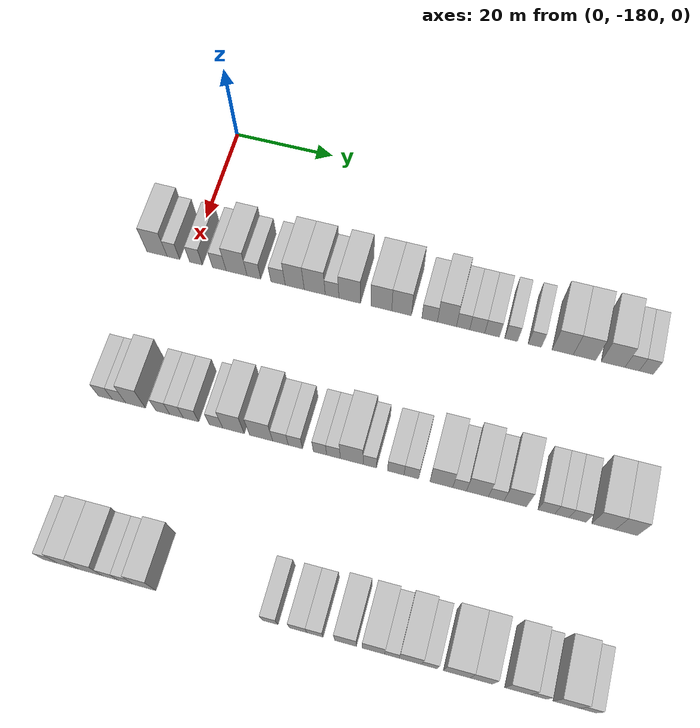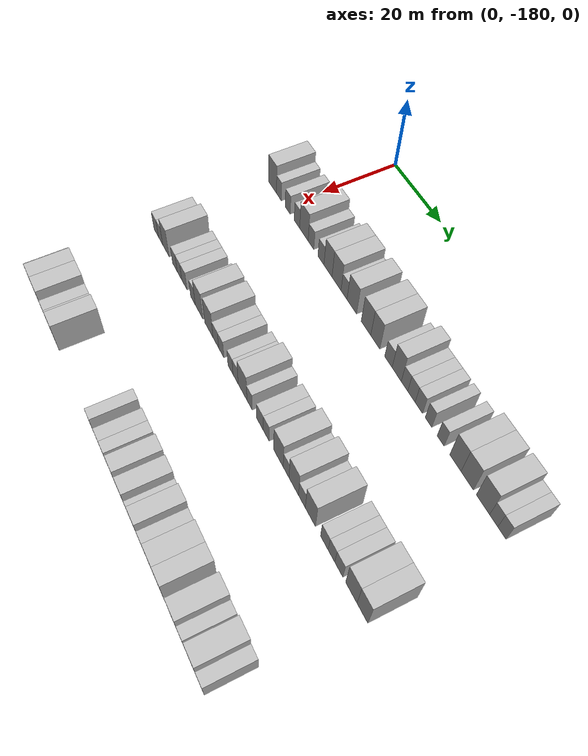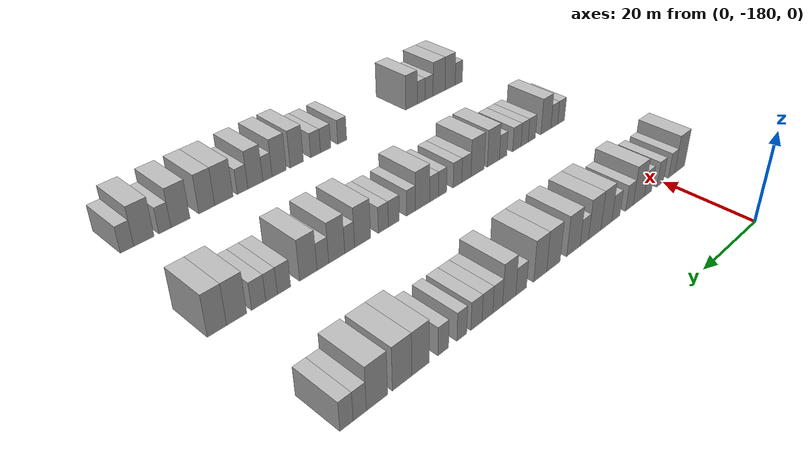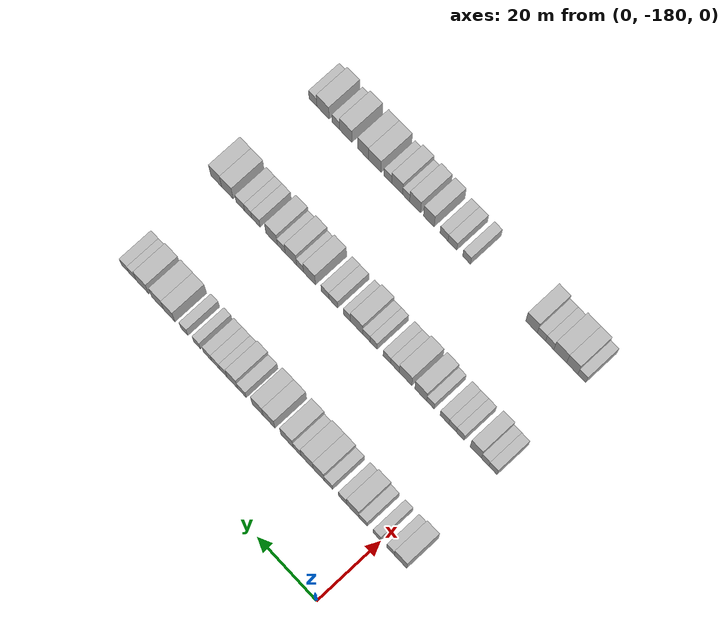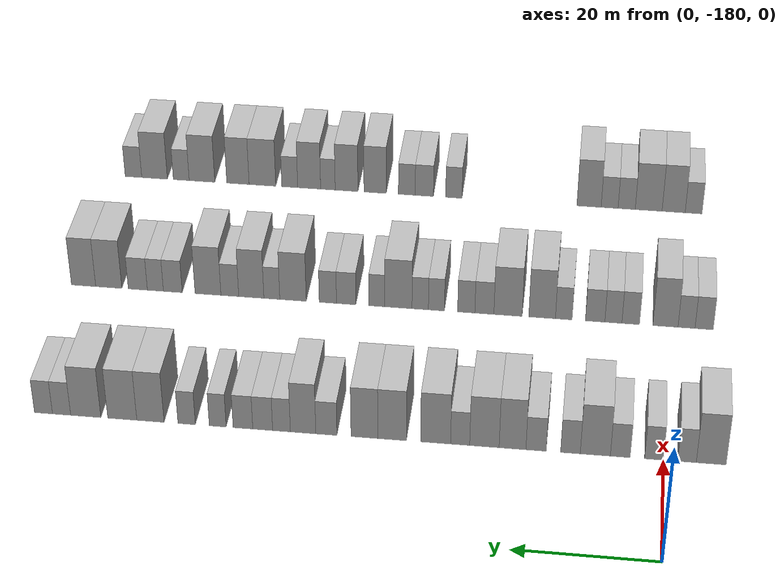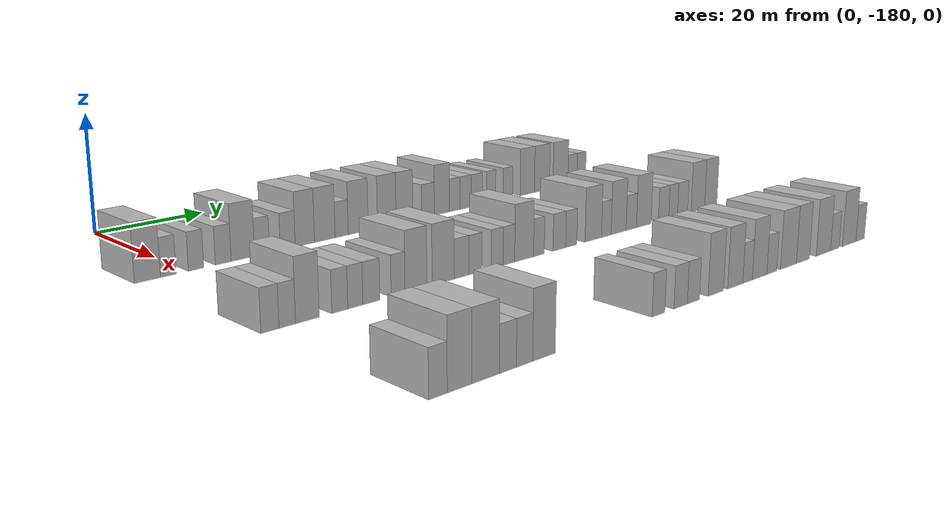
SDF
<sdf version="1.6">
 <world name="default">
  <model name="building_23">
   <static>1</static>
   <pose>25.0000 -186.5539 0 0.000000 0.000000 0.000000</pose>
   <link name="link">
    <pose>0 0 4.50 0 0 0</pose>
    <collision name="collision"><geometry><box><size>10.0000 4.1057 9.0000</size></box></geometry></collision>
    <visual name="visual">
     <cast_shadows>0</cast_shadows>
     <geometry><box><size>10.0000 4.1057 9.0000</size></box></geometry>
     <material>
      <script>
       <uri>model://HANNAS_wall/materials/scripts</uri>
       <uri>model://HANNAS_wall/materials/textures</uri>
       <name>vrc/HANNAS_wall</name>
      </script>
     </material>
    </visual>
   </link>
  </model>
  <model name="building_24">
   <static>1</static>
   <pose>25.0000 -183.2308 0 0.000000 0.000000 0.000000</pose>
   <link name="link">
    <pose>0 0 3.00 0 0 0</pose>
    <collision name="collision"><geometry><box><size>10.0000 2.5404 6.0000</size></box></geometry></collision>
    <visual name="visual">
     <cast_shadows>0</cast_shadows>
     <geometry><box><size>10.0000 2.5404 6.0000</size></box></geometry>
     <material>
      <script>
       <uri>model://HANNAS_wall/materials/scripts</uri>
       <uri>model://HANNAS_wall/materials/textures</uri>
       <name>vrc/HANNAS_wall</name>
      </script>
     </material>
    </visual>
   </link>
  </model>
  <model name="building_25">
   <static>1</static>
   <pose>25.0000 -178.6758 0 0.000000 0.000000 0.000000</pose>
   <link name="link">
    <pose>0 0 3.00 0 0 0</pose>
    <collision name="collision"><geometry><box><size>10.0000 2.5698 6.0000</size></box></geometry></collision>
    <visual name="visual">
     <cast_shadows>0</cast_shadows>
     <geometry><box><size>10.0000 2.5698 6.0000</size></box></geometry>
     <material>
      <script>
       <uri>model://HANNAS_wall/materials/scripts</uri>
       <uri>model://HANNAS_wall/materials/textures</uri>
       <name>vrc/HANNAS_wall</name>
      </script>
     </material>
    </visual>
   </link>
  </model>
  <model name="building_26">
   <static>1</static>
   <pose>25.0000 -174.0191 0 0.000000 0.000000 0.000000</pose>
   <link name="link">
    <pose>0 0 3.00 0 0 0</pose>
    <collision name="collision"><geometry><box><size>10.0000 2.7436 6.0000</size></box></geometry></collision>
    <visual name="visual">
     <cast_shadows>0</cast_shadows>
     <geometry><box><size>10.0000 2.7436 6.0000</size></box></geometry>
     <material>
      <script>
       <uri>model://HANNAS_wall/materials/scripts</uri>
       <uri>model://HANNAS_wall/materials/textures</uri>
       <name>vrc/HANNAS_wall</name>
      </script>
     </material>
    </visual>
   </link>
  </model>
  <model name="building_27">
   <static>1</static>
   <pose>25.0000 -170.5623 0 0.000000 0.000000 0.000000</pose>
   <link name="link">
    <pose>0 0 4.50 0 0 0</pose>
    <collision name="collision"><geometry><box><size>10.0000 4.1702 9.0000</size></box></geometry></collision>
    <visual name="visual">
     <cast_shadows>0</cast_shadows>
     <geometry><box><size>10.0000 4.1702 9.0000</size></box></geometry>
     <material>
      <script>
       <uri>model://HANNAS_wall/materials/scripts</uri>
       <uri>model://HANNAS_wall/materials/textures</uri>
       <name>vrc/HANNAS_wall</name>
      </script>
     </material>
    </visual>
   </link>
  </model>
  <model name="building_28">
   <static>1</static>
   <pose>25.0000 -167.1116 0 0.000000 0.000000 0.000000</pose>
   <link name="link">
    <pose>0 0 3.00 0 0 0</pose>
    <collision name="collision"><geometry><box><size>10.0000 2.7311 6.0000</size></box></geometry></collision>
    <visual name="visual">
     <cast_shadows>0</cast_shadows>
     <geometry><box><size>10.0000 2.7311 6.0000</size></box></geometry>
     <material>
      <script>
       <uri>model://HANNAS_wall/materials/scripts</uri>
       <uri>model://HANNAS_wall/materials/textures</uri>
       <name>vrc/HANNAS_wall</name>
      </script>
     </material>
    </visual>
   </link>
  </model>
  <model name="building_29">
   <static>1</static>
   <pose>25.0000 -162.3323 0 0.000000 0.000000 0.000000</pose>
   <link name="link">
    <pose>0 0 3.00 0 0 0</pose>
    <collision name="collision"><geometry><box><size>10.0000 2.8275 6.0000</size></box></geometry></collision>
    <visual name="visual">
     <cast_shadows>0</cast_shadows>
     <geometry><box><size>10.0000 2.8275 6.0000</size></box></geometry>
     <material>
      <script>
       <uri>model://HANNAS_wall/materials/scripts</uri>
       <uri>model://HANNAS_wall/materials/textures</uri>
       <name>vrc/HANNAS_wall</name>
      </script>
     </material>
    </visual>
   </link>
  </model>
  <model name="building_30">
   <static>1</static>
   <pose>25.0000 -159.0452 0 0.000000 0.000000 0.000000</pose>
   <link name="link">
    <pose>0 0 4.50 0 0 0</pose>
    <collision name="collision"><geometry><box><size>10.0000 3.7467 9.0000</size></box></geometry></collision>
    <visual name="visual">
     <cast_shadows>0</cast_shadows>
     <geometry><box><size>10.0000 3.7467 9.0000</size></box></geometry>
     <material>
      <script>
       <uri>model://HANNAS_wall/materials/scripts</uri>
       <uri>model://HANNAS_wall/materials/textures</uri>
       <name>vrc/HANNAS_wall</name>
      </script>
     </material>
    </visual>
   </link>
  </model>
  <model name="building_31">
   <static>1</static>
   <pose>25.0000 -155.1113 0 0.000000 0.000000 0.000000</pose>
   <link name="link">
    <pose>0 0 4.50 0 0 0</pose>
    <collision name="collision"><geometry><box><size>10.0000 4.1211 9.0000</size></box></geometry></collision>
    <visual name="visual">
     <cast_shadows>0</cast_shadows>
     <geometry><box><size>10.0000 4.1211 9.0000</size></box></geometry>
     <material>
      <script>
       <uri>model://HANNAS_wall/materials/scripts</uri>
       <uri>model://HANNAS_wall/materials/textures</uri>
       <name>vrc/HANNAS_wall</name>
      </script>
     </material>
    </visual>
   </link>
  </model>
  <model name="building_32">
   <static>1</static>
   <pose>25.0000 -151.7106 0 0.000000 0.000000 0.000000</pose>
   <link name="link">
    <pose>0 0 3.00 0 0 0</pose>
    <collision name="collision"><geometry><box><size>10.0000 2.6804 6.0000</size></box></geometry></collision>
    <visual name="visual">
     <cast_shadows>0</cast_shadows>
     <geometry><box><size>10.0000 2.6804 6.0000</size></box></geometry>
     <material>
      <script>
       <uri>model://HANNAS_wall/materials/scripts</uri>
       <uri>model://HANNAS_wall/materials/textures</uri>
       <name>vrc/HANNAS_wall</name>
      </script>
     </material>
    </visual>
   </link>
  </model>
  <model name="building_33">
   <static>1</static>
   <pose>25.0000 -148.2665 0 0.000000 0.000000 0.000000</pose>
   <link name="link">
    <pose>0 0 4.50 0 0 0</pose>
    <collision name="collision"><geometry><box><size>10.0000 4.2079 9.0000</size></box></geometry></collision>
    <visual name="visual">
     <cast_shadows>0</cast_shadows>
     <geometry><box><size>10.0000 4.2079 9.0000</size></box></geometry>
     <material>
      <script>
       <uri>model://HANNAS_wall/materials/scripts</uri>
       <uri>model://HANNAS_wall/materials/textures</uri>
       <name>vrc/HANNAS_wall</name>
      </script>
     </material>
    </visual>
   </link>
  </model>
  <model name="building_34">
   <static>1</static>
   <pose>25.0000 -142.1418 0 0.000000 0.000000 0.000000</pose>
   <link name="link">
    <pose>0 0 4.50 0 0 0</pose>
    <collision name="collision"><geometry><box><size>10.0000 4.0413 9.0000</size></box></geometry></collision>
    <visual name="visual">
     <cast_shadows>0</cast_shadows>
     <geometry><box><size>10.0000 4.0413 9.0000</size></box></geometry>
     <material>
      <script>
       <uri>model://HANNAS_wall/materials/scripts</uri>
       <uri>model://HANNAS_wall/materials/textures</uri>
       <name>vrc/HANNAS_wall</name>
      </script>
     </material>
    </visual>
   </link>
  </model>
  <model name="building_35">
   <static>1</static>
   <pose>25.0000 -138.2296 0 0.000000 0.000000 0.000000</pose>
   <link name="link">
    <pose>0 0 4.50 0 0 0</pose>
    <collision name="collision"><geometry><box><size>10.0000 3.7831 9.0000</size></box></geometry></collision>
    <visual name="visual">
     <cast_shadows>0</cast_shadows>
     <geometry><box><size>10.0000 3.7831 9.0000</size></box></geometry>
     <material>
      <script>
       <uri>model://HANNAS_wall/materials/scripts</uri>
       <uri>model://HANNAS_wall/materials/textures</uri>
       <name>vrc/HANNAS_wall</name>
      </script>
     </material>
    </visual>
   </link>
  </model>
  <model name="building_36">
   <static>1</static>
   <pose>25.0000 -132.8399 0 0.000000 0.000000 0.000000</pose>
   <link name="link">
    <pose>0 0 3.00 0 0 0</pose>
    <collision name="collision"><geometry><box><size>10.0000 2.9964 6.0000</size></box></geometry></collision>
    <visual name="visual">
     <cast_shadows>0</cast_shadows>
     <geometry><box><size>10.0000 2.9964 6.0000</size></box></geometry>
     <material>
      <script>
       <uri>model://HANNAS_wall/materials/scripts</uri>
       <uri>model://HANNAS_wall/materials/textures</uri>
       <name>vrc/HANNAS_wall</name>
      </script>
     </material>
    </visual>
   </link>
  </model>
  <model name="building_37">
   <static>1</static>
   <pose>25.0000 -129.5317 0 0.000000 0.000000 0.000000</pose>
   <link name="link">
    <pose>0 0 4.50 0 0 0</pose>
    <collision name="collision"><geometry><box><size>10.0000 3.6201 9.0000</size></box></geometry></collision>
    <visual name="visual">
     <cast_shadows>0</cast_shadows>
     <geometry><box><size>10.0000 3.6201 9.0000</size></box></geometry>
     <material>
      <script>
       <uri>model://HANNAS_wall/materials/scripts</uri>
       <uri>model://HANNAS_wall/materials/textures</uri>
       <name>vrc/HANNAS_wall</name>
      </script>
     </material>
    </visual>
   </link>
  </model>
  <model name="building_38">
   <static>1</static>
   <pose>25.0000 -126.4576 0 0.000000 0.000000 0.000000</pose>
   <link name="link">
    <pose>0 0 3.00 0 0 0</pose>
    <collision name="collision"><geometry><box><size>10.0000 2.5280 6.0000</size></box></geometry></collision>
    <visual name="visual">
     <cast_shadows>0</cast_shadows>
     <geometry><box><size>10.0000 2.5280 6.0000</size></box></geometry>
     <material>
      <script>
       <uri>model://HANNAS_wall/materials/scripts</uri>
       <uri>model://HANNAS_wall/materials/textures</uri>
       <name>vrc/HANNAS_wall</name>
      </script>
     </material>
    </visual>
   </link>
  </model>
  <model name="building_39">
   <static>1</static>
   <pose>25.0000 -123.7760 0 0.000000 0.000000 0.000000</pose>
   <link name="link">
    <pose>0 0 3.00 0 0 0</pose>
    <collision name="collision"><geometry><box><size>10.0000 2.8352 6.0000</size></box></geometry></collision>
    <visual name="visual">
     <cast_shadows>0</cast_shadows>
     <geometry><box><size>10.0000 2.8352 6.0000</size></box></geometry>
     <material>
      <script>
       <uri>model://HANNAS_wall/materials/scripts</uri>
       <uri>model://HANNAS_wall/materials/textures</uri>
       <name>vrc/HANNAS_wall</name>
      </script>
     </material>
    </visual>
   </link>
  </model>
  <model name="building_40">
   <static>1</static>
   <pose>25.0000 -120.9576 0 0.000000 0.000000 0.000000</pose>
   <link name="link">
    <pose>0 0 3.00 0 0 0</pose>
    <collision name="collision"><geometry><box><size>10.0000 2.8017 6.0000</size></box></geometry></collision>
    <visual name="visual">
     <cast_shadows>0</cast_shadows>
     <geometry><box><size>10.0000 2.8017 6.0000</size></box></geometry>
     <material>
      <script>
       <uri>model://HANNAS_wall/materials/scripts</uri>
       <uri>model://HANNAS_wall/materials/textures</uri>
       <name>vrc/HANNAS_wall</name>
      </script>
     </material>
    </visual>
   </link>
  </model>
  <model name="building_41">
   <static>1</static>
   <pose>25.0000 -117.3510 0 0.000000 0.000000 0.000000</pose>
   <link name="link">
    <pose>0 0 3.00 0 0 0</pose>
    <collision name="collision"><geometry><box><size>10.0000 2.4115 6.0000</size></box></geometry></collision>
    <visual name="visual">
     <cast_shadows>0</cast_shadows>
     <geometry><box><size>10.0000 2.4115 6.0000</size></box></geometry>
     <material>
      <script>
       <uri>model://HANNAS_wall/materials/scripts</uri>
       <uri>model://HANNAS_wall/materials/textures</uri>
       <name>vrc/HANNAS_wall</name>
      </script>
     </material>
    </visual>
   </link>
  </model>
  <model name="building_42">
   <static>1</static>
   <pose>25.0000 -112.8943 0 0.000000 0.000000 0.000000</pose>
   <link name="link">
    <pose>0 0 3.00 0 0 0</pose>
    <collision name="collision"><geometry><box><size>10.0000 2.5019 6.0000</size></box></geometry></collision>
    <visual name="visual">
     <cast_shadows>0</cast_shadows>
     <geometry><box><size>10.0000 2.5019 6.0000</size></box></geometry>
     <material>
      <script>
       <uri>model://HANNAS_wall/materials/scripts</uri>
       <uri>model://HANNAS_wall/materials/textures</uri>
       <name>vrc/HANNAS_wall</name>
      </script>
     </material>
    </visual>
   </link>
  </model>
  <model name="building_43">
   <static>1</static>
   <pose>25.0000 -107.6780 0 0.000000 0.000000 0.000000</pose>
   <link name="link">
    <pose>0 0 4.50 0 0 0</pose>
    <collision name="collision"><geometry><box><size>10.0000 3.9306 9.0000</size></box></geometry></collision>
    <visual name="visual">
     <cast_shadows>0</cast_shadows>
     <geometry><box><size>10.0000 3.9306 9.0000</size></box></geometry>
     <material>
      <script>
       <uri>model://HANNAS_wall/materials/scripts</uri>
       <uri>model://HANNAS_wall/materials/textures</uri>
       <name>vrc/HANNAS_wall</name>
      </script>
     </material>
    </visual>
   </link>
  </model>
  <model name="building_44">
   <static>1</static>
   <pose>25.0000 -103.6132 0 0.000000 0.000000 0.000000</pose>
   <link name="link">
    <pose>0 0 4.50 0 0 0</pose>
    <collision name="collision"><geometry><box><size>10.0000 4.1989 9.0000</size></box></geometry></collision>
    <visual name="visual">
     <cast_shadows>0</cast_shadows>
     <geometry><box><size>10.0000 4.1989 9.0000</size></box></geometry>
     <material>
      <script>
       <uri>model://HANNAS_wall/materials/scripts</uri>
       <uri>model://HANNAS_wall/materials/textures</uri>
       <name>vrc/HANNAS_wall</name>
      </script>
     </material>
    </visual>
   </link>
  </model>
  <model name="building_45">
   <static>1</static>
   <pose>25.0000 -98.3265 0 0.000000 0.000000 0.000000</pose>
   <link name="link">
    <pose>0 0 4.50 0 0 0</pose>
    <collision name="collision"><geometry><box><size>10.0000 4.3746 9.0000</size></box></geometry></collision>
    <visual name="visual">
     <cast_shadows>0</cast_shadows>
     <geometry><box><size>10.0000 4.3746 9.0000</size></box></geometry>
     <material>
      <script>
       <uri>model://HANNAS_wall/materials/scripts</uri>
       <uri>model://HANNAS_wall/materials/textures</uri>
       <name>vrc/HANNAS_wall</name>
      </script>
     </material>
    </visual>
   </link>
  </model>
  <model name="building_46">
   <static>1</static>
   <pose>25.0000 -94.8186 0 0.000000 0.000000 0.000000</pose>
   <link name="link">
    <pose>0 0 3.00 0 0 0</pose>
    <collision name="collision"><geometry><box><size>10.0000 2.6411 6.0000</size></box></geometry></collision>
    <visual name="visual">
     <cast_shadows>0</cast_shadows>
     <geometry><box><size>10.0000 2.6411 6.0000</size></box></geometry>
     <material>
      <script>
       <uri>model://HANNAS_wall/materials/scripts</uri>
       <uri>model://HANNAS_wall/materials/textures</uri>
       <name>vrc/HANNAS_wall</name>
      </script>
     </material>
    </visual>
   </link>
  </model>
  <model name="building_47">
   <static>1</static>
   <pose>25.0000 -92.1925 0 0.000000 0.000000 0.000000</pose>
   <link name="link">
    <pose>0 0 3.00 0 0 0</pose>
    <collision name="collision"><geometry><box><size>10.0000 2.6111 6.0000</size></box></geometry></collision>
    <visual name="visual">
     <cast_shadows>0</cast_shadows>
     <geometry><box><size>10.0000 2.6111 6.0000</size></box></geometry>
     <material>
      <script>
       <uri>model://HANNAS_wall/materials/scripts</uri>
       <uri>model://HANNAS_wall/materials/textures</uri>
       <name>vrc/HANNAS_wall</name>
      </script>
     </material>
    </visual>
   </link>
  </model>
  <model name="building_172">
   <static>1</static>
   <pose>55.0000 -185.7574 0 0.000000 0.000000 0.000000</pose>
   <link name="link">
    <pose>0 0 3.00 0 0 0</pose>
    <collision name="collision"><geometry><box><size>10.0000 2.7124 6.0000</size></box></geometry></collision>
    <visual name="visual">
     <cast_shadows>0</cast_shadows>
     <geometry><box><size>10.0000 2.7124 6.0000</size></box></geometry>
     <material>
      <script>
       <uri>model://HANNAS_wall/materials/scripts</uri>
       <uri>model://HANNAS_wall/materials/textures</uri>
       <name>vrc/HANNAS_wall</name>
      </script>
     </material>
    </visual>
   </link>
  </model>
  <model name="building_173">
   <static>1</static>
   <pose>55.0000 -183.1334 0 0.000000 0.000000 0.000000</pose>
   <link name="link">
    <pose>0 0 3.00 0 0 0</pose>
    <collision name="collision"><geometry><box><size>10.0000 2.5355 6.0000</size></box></geometry></collision>
    <visual name="visual">
     <cast_shadows>0</cast_shadows>
     <geometry><box><size>10.0000 2.5355 6.0000</size></box></geometry>
     <material>
      <script>
       <uri>model://HANNAS_wall/materials/scripts</uri>
       <uri>model://HANNAS_wall/materials/textures</uri>
       <name>vrc/HANNAS_wall</name>
      </script>
     </material>
    </visual>
   </link>
  </model>
  <model name="building_174">
   <static>1</static>
   <pose>55.0000 -179.9949 0 0.000000 0.000000 0.000000</pose>
   <link name="link">
    <pose>0 0 4.50 0 0 0</pose>
    <collision name="collision"><geometry><box><size>10.0000 3.7415 9.0000</size></box></geometry></collision>
    <visual name="visual">
     <cast_shadows>0</cast_shadows>
     <geometry><box><size>10.0000 3.7415 9.0000</size></box></geometry>
     <material>
      <script>
       <uri>model://HANNAS_wall/materials/scripts</uri>
       <uri>model://HANNAS_wall/materials/textures</uri>
       <name>vrc/HANNAS_wall</name>
      </script>
     </material>
    </visual>
   </link>
  </model>
  <model name="building_175">
   <static>1</static>
   <pose>55.0000 -174.8035 0 0.000000 0.000000 0.000000</pose>
   <link name="link">
    <pose>0 0 3.00 0 0 0</pose>
    <collision name="collision"><geometry><box><size>10.0000 2.6413 6.0000</size></box></geometry></collision>
    <visual name="visual">
     <cast_shadows>0</cast_shadows>
     <geometry><box><size>10.0000 2.6413 6.0000</size></box></geometry>
     <material>
      <script>
       <uri>model://HANNAS_wall/materials/scripts</uri>
       <uri>model://HANNAS_wall/materials/textures</uri>
       <name>vrc/HANNAS_wall</name>
      </script>
     </material>
    </visual>
   </link>
  </model>
  <model name="building_176">
   <static>1</static>
   <pose>55.0000 -172.2052 0 0.000000 0.000000 0.000000</pose>
   <link name="link">
    <pose>0 0 3.00 0 0 0</pose>
    <collision name="collision"><geometry><box><size>10.0000 2.5553 6.0000</size></box></geometry></collision>
    <visual name="visual">
     <cast_shadows>0</cast_shadows>
     <geometry><box><size>10.0000 2.5553 6.0000</size></box></geometry>
     <material>
      <script>
       <uri>model://HANNAS_wall/materials/scripts</uri>
       <uri>model://HANNAS_wall/materials/textures</uri>
       <name>vrc/HANNAS_wall</name>
      </script>
     </material>
    </visual>
   </link>
  </model>
  <model name="building_177">
   <static>1</static>
   <pose>55.0000 -169.4721 0 0.000000 0.000000 0.000000</pose>
   <link name="link">
    <pose>0 0 3.00 0 0 0</pose>
    <collision name="collision"><geometry><box><size>10.0000 2.9108 6.0000</size></box></geometry></collision>
    <visual name="visual">
     <cast_shadows>0</cast_shadows>
     <geometry><box><size>10.0000 2.9108 6.0000</size></box></geometry>
     <material>
      <script>
       <uri>model://HANNAS_wall/materials/scripts</uri>
       <uri>model://HANNAS_wall/materials/textures</uri>
       <name>vrc/HANNAS_wall</name>
      </script>
     </material>
    </visual>
   </link>
  </model>
  <model name="building_178">
   <static>1</static>
   <pose>55.0000 -164.7598 0 0.000000 0.000000 0.000000</pose>
   <link name="link">
    <pose>0 0 3.00 0 0 0</pose>
    <collision name="collision"><geometry><box><size>10.0000 2.5138 6.0000</size></box></geometry></collision>
    <visual name="visual">
     <cast_shadows>0</cast_shadows>
     <geometry><box><size>10.0000 2.5138 6.0000</size></box></geometry>
     <material>
      <script>
       <uri>model://HANNAS_wall/materials/scripts</uri>
       <uri>model://HANNAS_wall/materials/textures</uri>
       <name>vrc/HANNAS_wall</name>
      </script>
     </material>
    </visual>
   </link>
  </model>
  <model name="building_179">
   <static>1</static>
   <pose>55.0000 -161.4939 0 0.000000 0.000000 0.000000</pose>
   <link name="link">
    <pose>0 0 4.50 0 0 0</pose>
    <collision name="collision"><geometry><box><size>10.0000 4.0181 9.0000</size></box></geometry></collision>
    <visual name="visual">
     <cast_shadows>0</cast_shadows>
     <geometry><box><size>10.0000 4.0181 9.0000</size></box></geometry>
     <material>
      <script>
       <uri>model://HANNAS_wall/materials/scripts</uri>
       <uri>model://HANNAS_wall/materials/textures</uri>
       <name>vrc/HANNAS_wall</name>
      </script>
     </material>
    </visual>
   </link>
  </model>
  <model name="building_180">
   <static>1</static>
   <pose>55.0000 -156.3448 0 0.000000 0.000000 0.000000</pose>
   <link name="link">
    <pose>0 0 4.50 0 0 0</pose>
    <collision name="collision"><geometry><box><size>10.0000 4.2801 9.0000</size></box></geometry></collision>
    <visual name="visual">
     <cast_shadows>0</cast_shadows>
     <geometry><box><size>10.0000 4.2801 9.0000</size></box></geometry>
     <material>
      <script>
       <uri>model://HANNAS_wall/materials/scripts</uri>
       <uri>model://HANNAS_wall/materials/textures</uri>
       <name>vrc/HANNAS_wall</name>
      </script>
     </material>
    </visual>
   </link>
  </model>
  <model name="building_181">
   <static>1</static>
   <pose>55.0000 -152.7643 0 0.000000 0.000000 0.000000</pose>
   <link name="link">
    <pose>0 0 3.00 0 0 0</pose>
    <collision name="collision"><geometry><box><size>10.0000 2.8809 6.0000</size></box></geometry></collision>
    <visual name="visual">
     <cast_shadows>0</cast_shadows>
     <geometry><box><size>10.0000 2.8809 6.0000</size></box></geometry>
     <material>
      <script>
       <uri>model://HANNAS_wall/materials/scripts</uri>
       <uri>model://HANNAS_wall/materials/textures</uri>
       <name>vrc/HANNAS_wall</name>
      </script>
     </material>
    </visual>
   </link>
  </model>
  <model name="building_182">
   <static>1</static>
   <pose>55.0000 -150.0149 0 0.000000 0.000000 0.000000</pose>
   <link name="link">
    <pose>0 0 3.00 0 0 0</pose>
    <collision name="collision"><geometry><box><size>10.0000 2.6179 6.0000</size></box></geometry></collision>
    <visual name="visual">
     <cast_shadows>0</cast_shadows>
     <geometry><box><size>10.0000 2.6179 6.0000</size></box></geometry>
     <material>
      <script>
       <uri>model://HANNAS_wall/materials/scripts</uri>
       <uri>model://HANNAS_wall/materials/textures</uri>
       <name>vrc/HANNAS_wall</name>
      </script>
     </material>
    </visual>
   </link>
  </model>
  <model name="building_183">
   <static>1</static>
   <pose>55.0000 -145.4830 0 0.000000 0.000000 0.000000</pose>
   <link name="link">
    <pose>0 0 3.00 0 0 0</pose>
    <collision name="collision"><geometry><box><size>10.0000 2.4460 6.0000</size></box></geometry></collision>
    <visual name="visual">
     <cast_shadows>0</cast_shadows>
     <geometry><box><size>10.0000 2.4460 6.0000</size></box></geometry>
     <material>
      <script>
       <uri>model://HANNAS_wall/materials/scripts</uri>
       <uri>model://HANNAS_wall/materials/textures</uri>
       <name>vrc/HANNAS_wall</name>
      </script>
     </material>
    </visual>
   </link>
  </model>
  <model name="building_184">
   <static>1</static>
   <pose>55.0000 -143.0104 0 0.000000 0.000000 0.000000</pose>
   <link name="link">
    <pose>0 0 3.00 0 0 0</pose>
    <collision name="collision"><geometry><box><size>10.0000 2.4992 6.0000</size></box></geometry></collision>
    <visual name="visual">
     <cast_shadows>0</cast_shadows>
     <geometry><box><size>10.0000 2.4992 6.0000</size></box></geometry>
     <material>
      <script>
       <uri>model://HANNAS_wall/materials/scripts</uri>
       <uri>model://HANNAS_wall/materials/textures</uri>
       <name>vrc/HANNAS_wall</name>
      </script>
     </material>
    </visual>
   </link>
  </model>
  <model name="building_185">
   <static>1</static>
   <pose>55.0000 -139.6831 0 0.000000 0.000000 0.000000</pose>
   <link name="link">
    <pose>0 0 4.50 0 0 0</pose>
    <collision name="collision"><geometry><box><size>10.0000 4.1555 9.0000</size></box></geometry></collision>
    <visual name="visual">
     <cast_shadows>0</cast_shadows>
     <geometry><box><size>10.0000 4.1555 9.0000</size></box></geometry>
     <material>
      <script>
       <uri>model://HANNAS_wall/materials/scripts</uri>
       <uri>model://HANNAS_wall/materials/textures</uri>
       <name>vrc/HANNAS_wall</name>
      </script>
     </material>
    </visual>
   </link>
  </model>
  <model name="building_186">
   <static>1</static>
   <pose>55.0000 -136.3929 0 0.000000 0.000000 0.000000</pose>
   <link name="link">
    <pose>0 0 3.00 0 0 0</pose>
    <collision name="collision"><geometry><box><size>10.0000 2.4247 6.0000</size></box></geometry></collision>
    <visual name="visual">
     <cast_shadows>0</cast_shadows>
     <geometry><box><size>10.0000 2.4247 6.0000</size></box></geometry>
     <material>
      <script>
       <uri>model://HANNAS_wall/materials/scripts</uri>
       <uri>model://HANNAS_wall/materials/textures</uri>
       <name>vrc/HANNAS_wall</name>
      </script>
     </material>
    </visual>
   </link>
  </model>
  <model name="building_187">
   <static>1</static>
   <pose>55.0000 -131.6922 0 0.000000 0.000000 0.000000</pose>
   <link name="link">
    <pose>0 0 3.00 0 0 0</pose>
    <collision name="collision"><geometry><box><size>10.0000 2.9767 6.0000</size></box></geometry></collision>
    <visual name="visual">
     <cast_shadows>0</cast_shadows>
     <geometry><box><size>10.0000 2.9767 6.0000</size></box></geometry>
     <material>
      <script>
       <uri>model://HANNAS_wall/materials/scripts</uri>
       <uri>model://HANNAS_wall/materials/textures</uri>
       <name>vrc/HANNAS_wall</name>
      </script>
     </material>
    </visual>
   </link>
  </model>
  <model name="building_188">
   <static>1</static>
   <pose>55.0000 -128.8823 0 0.000000 0.000000 0.000000</pose>
   <link name="link">
    <pose>0 0 3.00 0 0 0</pose>
    <collision name="collision"><geometry><box><size>10.0000 2.6431 6.0000</size></box></geometry></collision>
    <visual name="visual">
     <cast_shadows>0</cast_shadows>
     <geometry><box><size>10.0000 2.6431 6.0000</size></box></geometry>
     <material>
      <script>
       <uri>model://HANNAS_wall/materials/scripts</uri>
       <uri>model://HANNAS_wall/materials/textures</uri>
       <name>vrc/HANNAS_wall</name>
      </script>
     </material>
    </visual>
   </link>
  </model>
  <model name="building_189">
   <static>1</static>
   <pose>55.0000 -123.5171 0 0.000000 0.000000 0.000000</pose>
   <link name="link">
    <pose>0 0 4.50 0 0 0</pose>
    <collision name="collision"><geometry><box><size>10.0000 4.0874 9.0000</size></box></geometry></collision>
    <visual name="visual">
     <cast_shadows>0</cast_shadows>
     <geometry><box><size>10.0000 4.0874 9.0000</size></box></geometry>
     <material>
      <script>
       <uri>model://HANNAS_wall/materials/scripts</uri>
       <uri>model://HANNAS_wall/materials/textures</uri>
       <name>vrc/HANNAS_wall</name>
      </script>
     </material>
    </visual>
   </link>
  </model>
  <model name="building_190">
   <static>1</static>
   <pose>55.0000 -120.2467 0 0.000000 0.000000 0.000000</pose>
   <link name="link">
    <pose>0 0 3.00 0 0 0</pose>
    <collision name="collision"><geometry><box><size>10.0000 2.4534 6.0000</size></box></geometry></collision>
    <visual name="visual">
     <cast_shadows>0</cast_shadows>
     <geometry><box><size>10.0000 2.4534 6.0000</size></box></geometry>
     <material>
      <script>
       <uri>model://HANNAS_wall/materials/scripts</uri>
       <uri>model://HANNAS_wall/materials/textures</uri>
       <name>vrc/HANNAS_wall</name>
      </script>
     </material>
    </visual>
   </link>
  </model>
  <model name="building_191">
   <static>1</static>
   <pose>55.0000 -117.0737 0 0.000000 0.000000 0.000000</pose>
   <link name="link">
    <pose>0 0 4.50 0 0 0</pose>
    <collision name="collision"><geometry><box><size>10.0000 3.8924 9.0000</size></box></geometry></collision>
    <visual name="visual">
     <cast_shadows>0</cast_shadows>
     <geometry><box><size>10.0000 3.8924 9.0000</size></box></geometry>
     <material>
      <script>
       <uri>model://HANNAS_wall/materials/scripts</uri>
       <uri>model://HANNAS_wall/materials/textures</uri>
       <name>vrc/HANNAS_wall</name>
      </script>
     </material>
    </visual>
   </link>
  </model>
  <model name="building_192">
   <static>1</static>
   <pose>55.0000 -113.7496 0 0.000000 0.000000 0.000000</pose>
   <link name="link">
    <pose>0 0 3.00 0 0 0</pose>
    <collision name="collision"><geometry><box><size>10.0000 2.7558 6.0000</size></box></geometry></collision>
    <visual name="visual">
     <cast_shadows>0</cast_shadows>
     <geometry><box><size>10.0000 2.7558 6.0000</size></box></geometry>
     <material>
      <script>
       <uri>model://HANNAS_wall/materials/scripts</uri>
       <uri>model://HANNAS_wall/materials/textures</uri>
       <name>vrc/HANNAS_wall</name>
      </script>
     </material>
    </visual>
   </link>
  </model>
  <model name="building_193">
   <static>1</static>
   <pose>55.0000 -110.3648 0 0.000000 0.000000 0.000000</pose>
   <link name="link">
    <pose>0 0 4.50 0 0 0</pose>
    <collision name="collision"><geometry><box><size>10.0000 4.0139 9.0000</size></box></geometry></collision>
    <visual name="visual">
     <cast_shadows>0</cast_shadows>
     <geometry><box><size>10.0000 4.0139 9.0000</size></box></geometry>
     <material>
      <script>
       <uri>model://HANNAS_wall/materials/scripts</uri>
       <uri>model://HANNAS_wall/materials/textures</uri>
       <name>vrc/HANNAS_wall</name>
      </script>
     </material>
    </visual>
   </link>
  </model>
  <model name="building_194">
   <static>1</static>
   <pose>55.0000 -104.8925 0 0.000000 0.000000 0.000000</pose>
   <link name="link">
    <pose>0 0 3.00 0 0 0</pose>
    <collision name="collision"><geometry><box><size>10.0000 2.9306 6.0000</size></box></geometry></collision>
    <visual name="visual">
     <cast_shadows>0</cast_shadows>
     <geometry><box><size>10.0000 2.9306 6.0000</size></box></geometry>
     <material>
      <script>
       <uri>model://HANNAS_wall/materials/scripts</uri>
       <uri>model://HANNAS_wall/materials/textures</uri>
       <name>vrc/HANNAS_wall</name>
      </script>
     </material>
    </visual>
   </link>
  </model>
  <model name="building_195">
   <static>1</static>
   <pose>55.0000 -102.1771 0 0.000000 0.000000 0.000000</pose>
   <link name="link">
    <pose>0 0 3.00 0 0 0</pose>
    <collision name="collision"><geometry><box><size>10.0000 2.5002 6.0000</size></box></geometry></collision>
    <visual name="visual">
     <cast_shadows>0</cast_shadows>
     <geometry><box><size>10.0000 2.5002 6.0000</size></box></geometry>
     <material>
      <script>
       <uri>model://HANNAS_wall/materials/scripts</uri>
       <uri>model://HANNAS_wall/materials/textures</uri>
       <name>vrc/HANNAS_wall</name>
      </script>
     </material>
    </visual>
   </link>
  </model>
  <model name="building_196">
   <static>1</static>
   <pose>55.0000 -99.4334 0 0.000000 0.000000 0.000000</pose>
   <link name="link">
    <pose>0 0 3.00 0 0 0</pose>
    <collision name="collision"><geometry><box><size>10.0000 2.9874 6.0000</size></box></geometry></collision>
    <visual name="visual">
     <cast_shadows>0</cast_shadows>
     <geometry><box><size>10.0000 2.9874 6.0000</size></box></geometry>
     <material>
      <script>
       <uri>model://HANNAS_wall/materials/scripts</uri>
       <uri>model://HANNAS_wall/materials/textures</uri>
       <name>vrc/HANNAS_wall</name>
      </script>
     </material>
    </visual>
   </link>
  </model>
  <model name="building_197">
   <static>1</static>
   <pose>55.0000 -94.8916 0 0.000000 0.000000 0.000000</pose>
   <link name="link">
    <pose>0 0 4.50 0 0 0</pose>
    <collision name="collision"><geometry><box><size>10.0000 4.0961 9.0000</size></box></geometry></collision>
    <visual name="visual">
     <cast_shadows>0</cast_shadows>
     <geometry><box><size>10.0000 4.0961 9.0000</size></box></geometry>
     <material>
      <script>
       <uri>model://HANNAS_wall/materials/scripts</uri>
       <uri>model://HANNAS_wall/materials/textures</uri>
       <name>vrc/HANNAS_wall</name>
      </script>
     </material>
    </visual>
   </link>
  </model>
  <model name="building_198">
   <static>1</static>
   <pose>55.0000 -90.9437 0 0.000000 0.000000 0.000000</pose>
   <link name="link">
    <pose>0 0 4.50 0 0 0</pose>
    <collision name="collision"><geometry><box><size>10.0000 3.7998 9.0000</size></box></geometry></collision>
    <visual name="visual">
     <cast_shadows>0</cast_shadows>
     <geometry><box><size>10.0000 3.7998 9.0000</size></box></geometry>
     <material>
      <script>
       <uri>model://HANNAS_wall/materials/scripts</uri>
       <uri>model://HANNAS_wall/materials/textures</uri>
       <name>vrc/HANNAS_wall</name>
      </script>
     </material>
    </visual>
   </link>
  </model>
  <model name="building_315">
   <static>1</static>
   <pose>85.0000 -184.2504 0 0.000000 0.000000 0.000000</pose>
   <link name="link">
    <pose>0 0 3.00 0 0 0</pose>
    <collision name="collision"><geometry><box><size>10.0000 2.7131 6.0000</size></box></geometry></collision>
    <visual name="visual">
     <cast_shadows>0</cast_shadows>
     <geometry><box><size>10.0000 2.7131 6.0000</size></box></geometry>
     <material>
      <script>
       <uri>model://HANNAS_wall/materials/scripts</uri>
       <uri>model://HANNAS_wall/materials/textures</uri>
       <name>vrc/HANNAS_wall</name>
      </script>
     </material>
    </visual>
   </link>
  </model>
  <model name="building_316">
   <static>1</static>
   <pose>85.0000 -181.0394 0 0.000000 0.000000 0.000000</pose>
   <link name="link">
    <pose>0 0 4.50 0 0 0</pose>
    <collision name="collision"><geometry><box><size>10.0000 3.7089 9.0000</size></box></geometry></collision>
    <visual name="visual">
     <cast_shadows>0</cast_shadows>
     <geometry><box><size>10.0000 3.7089 9.0000</size></box></geometry>
     <material>
      <script>
       <uri>model://HANNAS_wall/materials/scripts</uri>
       <uri>model://HANNAS_wall/materials/textures</uri>
       <name>vrc/HANNAS_wall</name>
      </script>
     </material>
    </visual>
   </link>
  </model>
  <model name="building_317">
   <static>1</static>
   <pose>85.0000 -177.0277 0 0.000000 0.000000 0.000000</pose>
   <link name="link">
    <pose>0 0 4.50 0 0 0</pose>
    <collision name="collision"><geometry><box><size>10.0000 4.3145 9.0000</size></box></geometry></collision>
    <visual name="visual">
     <cast_shadows>0</cast_shadows>
     <geometry><box><size>10.0000 4.3145 9.0000</size></box></geometry>
     <material>
      <script>
       <uri>model://HANNAS_wall/materials/scripts</uri>
       <uri>model://HANNAS_wall/materials/textures</uri>
       <name>vrc/HANNAS_wall</name>
      </script>
     </material>
    </visual>
   </link>
  </model>
  <model name="building_318">
   <static>1</static>
   <pose>85.0000 -173.4878 0 0.000000 0.000000 0.000000</pose>
   <link name="link">
    <pose>0 0 3.00 0 0 0</pose>
    <collision name="collision"><geometry><box><size>10.0000 2.7653 6.0000</size></box></geometry></collision>
    <visual name="visual">
     <cast_shadows>0</cast_shadows>
     <geometry><box><size>10.0000 2.7653 6.0000</size></box></geometry>
     <material>
      <script>
       <uri>model://HANNAS_wall/materials/scripts</uri>
       <uri>model://HANNAS_wall/materials/textures</uri>
       <name>vrc/HANNAS_wall</name>
      </script>
     </material>
    </visual>
   </link>
  </model>
  <model name="building_319">
   <static>1</static>
   <pose>85.0000 -170.7385 0 0.000000 0.000000 0.000000</pose>
   <link name="link">
    <pose>0 0 3.00 0 0 0</pose>
    <collision name="collision"><geometry><box><size>10.0000 2.7332 6.0000</size></box></geometry></collision>
    <visual name="visual">
     <cast_shadows>0</cast_shadows>
     <geometry><box><size>10.0000 2.7332 6.0000</size></box></geometry>
     <material>
      <script>
       <uri>model://HANNAS_wall/materials/scripts</uri>
       <uri>model://HANNAS_wall/materials/textures</uri>
       <name>vrc/HANNAS_wall</name>
      </script>
     </material>
    </visual>
   </link>
  </model>
  <model name="building_320">
   <static>1</static>
   <pose>85.0000 -167.4129 0 0.000000 0.000000 0.000000</pose>
   <link name="link">
    <pose>0 0 4.50 0 0 0</pose>
    <collision name="collision"><geometry><box><size>10.0000 3.9181 9.0000</size></box></geometry></collision>
    <visual name="visual">
     <cast_shadows>0</cast_shadows>
     <geometry><box><size>10.0000 3.9181 9.0000</size></box></geometry>
     <material>
      <script>
       <uri>model://HANNAS_wall/materials/scripts</uri>
       <uri>model://HANNAS_wall/materials/textures</uri>
       <name>vrc/HANNAS_wall</name>
      </script>
     </material>
    </visual>
   </link>
  </model>
  <model name="building_321">
   <static>1</static>
   <pose>85.0000 -145.4329 0 0.000000 0.000000 0.000000</pose>
   <link name="link">
    <pose>0 0 3.00 0 0 0</pose>
    <collision name="collision"><geometry><box><size>10.0000 2.6806 6.0000</size></box></geometry></collision>
    <visual name="visual">
     <cast_shadows>0</cast_shadows>
     <geometry><box><size>10.0000 2.6806 6.0000</size></box></geometry>
     <material>
      <script>
       <uri>model://HANNAS_wall/materials/scripts</uri>
       <uri>model://HANNAS_wall/materials/textures</uri>
       <name>vrc/HANNAS_wall</name>
      </script>
     </material>
    </visual>
   </link>
  </model>
  <model name="building_322">
   <static>1</static>
   <pose>85.0000 -140.5993 0 0.000000 0.000000 0.000000</pose>
   <link name="link">
    <pose>0 0 3.00 0 0 0</pose>
    <collision name="collision"><geometry><box><size>10.0000 2.9866 6.0000</size></box></geometry></collision>
    <visual name="visual">
     <cast_shadows>0</cast_shadows>
     <geometry><box><size>10.0000 2.9866 6.0000</size></box></geometry>
     <material>
      <script>
       <uri>model://HANNAS_wall/materials/scripts</uri>
       <uri>model://HANNAS_wall/materials/textures</uri>
       <name>vrc/HANNAS_wall</name>
      </script>
     </material>
    </visual>
   </link>
  </model>
  <model name="building_323">
   <static>1</static>
   <pose>85.0000 -137.7267 0 0.000000 0.000000 0.000000</pose>
   <link name="link">
    <pose>0 0 3.00 0 0 0</pose>
    <collision name="collision"><geometry><box><size>10.0000 2.7586 6.0000</size></box></geometry></collision>
    <visual name="visual">
     <cast_shadows>0</cast_shadows>
     <geometry><box><size>10.0000 2.7586 6.0000</size></box></geometry>
     <material>
      <script>
       <uri>model://HANNAS_wall/materials/scripts</uri>
       <uri>model://HANNAS_wall/materials/textures</uri>
       <name>vrc/HANNAS_wall</name>
      </script>
     </material>
    </visual>
   </link>
  </model>
  <model name="building_324">
   <static>1</static>
   <pose>85.0000 -132.5130 0 0.000000 0.000000 0.000000</pose>
   <link name="link">
    <pose>0 0 4.50 0 0 0</pose>
    <collision name="collision"><geometry><box><size>10.0000 3.6687 9.0000</size></box></geometry></collision>
    <visual name="visual">
     <cast_shadows>0</cast_shadows>
     <geometry><box><size>10.0000 3.6687 9.0000</size></box></geometry>
     <material>
      <script>
       <uri>model://HANNAS_wall/materials/scripts</uri>
       <uri>model://HANNAS_wall/materials/textures</uri>
       <name>vrc/HANNAS_wall</name>
      </script>
     </material>
    </visual>
   </link>
  </model>
  <model name="building_325">
   <static>1</static>
   <pose>85.0000 -127.8014 0 0.000000 0.000000 0.000000</pose>
   <link name="link">
    <pose>0 0 4.50 0 0 0</pose>
    <collision name="collision"><geometry><box><size>10.0000 3.7545 9.0000</size></box></geometry></collision>
    <visual name="visual">
     <cast_shadows>0</cast_shadows>
     <geometry><box><size>10.0000 3.7545 9.0000</size></box></geometry>
     <material>
      <script>
       <uri>model://HANNAS_wall/materials/scripts</uri>
       <uri>model://HANNAS_wall/materials/textures</uri>
       <name>vrc/HANNAS_wall</name>
      </script>
     </material>
    </visual>
   </link>
  </model>
  <model name="building_326">
   <static>1</static>
   <pose>85.0000 -124.7147 0 0.000000 0.000000 0.000000</pose>
   <link name="link">
    <pose>0 0 3.00 0 0 0</pose>
    <collision name="collision"><geometry><box><size>10.0000 2.4189 6.0000</size></box></geometry></collision>
    <visual name="visual">
     <cast_shadows>0</cast_shadows>
     <geometry><box><size>10.0000 2.4189 6.0000</size></box></geometry>
     <material>
      <script>
       <uri>model://HANNAS_wall/materials/scripts</uri>
       <uri>model://HANNAS_wall/materials/textures</uri>
       <name>vrc/HANNAS_wall</name>
      </script>
     </material>
    </visual>
   </link>
  </model>
  <model name="building_327">
   <static>1</static>
   <pose>85.0000 -121.6084 0 0.000000 0.000000 0.000000</pose>
   <link name="link">
    <pose>0 0 4.50 0 0 0</pose>
    <collision name="collision"><geometry><box><size>10.0000 3.7936 9.0000</size></box></geometry></collision>
    <visual name="visual">
     <cast_shadows>0</cast_shadows>
     <geometry><box><size>10.0000 3.7936 9.0000</size></box></geometry>
     <material>
      <script>
       <uri>model://HANNAS_wall/materials/scripts</uri>
       <uri>model://HANNAS_wall/materials/textures</uri>
       <name>vrc/HANNAS_wall</name>
      </script>
     </material>
    </visual>
   </link>
  </model>
  <model name="building_328">
   <static>1</static>
   <pose>85.0000 -118.3917 0 0.000000 0.000000 0.000000</pose>
   <link name="link">
    <pose>0 0 3.00 0 0 0</pose>
    <collision name="collision"><geometry><box><size>10.0000 2.6398 6.0000</size></box></geometry></collision>
    <visual name="visual">
     <cast_shadows>0</cast_shadows>
     <geometry><box><size>10.0000 2.6398 6.0000</size></box></geometry>
     <material>
      <script>
       <uri>model://HANNAS_wall/materials/scripts</uri>
       <uri>model://HANNAS_wall/materials/textures</uri>
       <name>vrc/HANNAS_wall</name>
      </script>
     </material>
    </visual>
   </link>
  </model>
  <model name="building_329">
   <static>1</static>
   <pose>85.0000 -113.8529 0 0.000000 0.000000 0.000000</pose>
   <link name="link">
    <pose>0 0 4.50 0 0 0</pose>
    <collision name="collision"><geometry><box><size>10.0000 4.4379 9.0000</size></box></geometry></collision>
    <visual name="visual">
     <cast_shadows>0</cast_shadows>
     <geometry><box><size>10.0000 4.4379 9.0000</size></box></geometry>
     <material>
      <script>
       <uri>model://HANNAS_wall/materials/scripts</uri>
       <uri>model://HANNAS_wall/materials/textures</uri>
       <name>vrc/HANNAS_wall</name>
      </script>
     </material>
    </visual>
   </link>
  </model>
  <model name="building_330">
   <static>1</static>
   <pose>85.0000 -109.7742 0 0.000000 0.000000 0.000000</pose>
   <link name="link">
    <pose>0 0 4.50 0 0 0</pose>
    <collision name="collision"><geometry><box><size>10.0000 3.7193 9.0000</size></box></geometry></collision>
    <visual name="visual">
     <cast_shadows>0</cast_shadows>
     <geometry><box><size>10.0000 3.7193 9.0000</size></box></geometry>
     <material>
      <script>
       <uri>model://HANNAS_wall/materials/scripts</uri>
       <uri>model://HANNAS_wall/materials/textures</uri>
       <name>vrc/HANNAS_wall</name>
      </script>
     </material>
    </visual>
   </link>
  </model>
  <model name="building_331">
   <static>1</static>
   <pose>85.0000 -103.7728 0 0.000000 0.000000 0.000000</pose>
   <link name="link">
    <pose>0 0 4.50 0 0 0</pose>
    <collision name="collision"><geometry><box><size>10.0000 4.2836 9.0000</size></box></geometry></collision>
    <visual name="visual">
     <cast_shadows>0</cast_shadows>
     <geometry><box><size>10.0000 4.2836 9.0000</size></box></geometry>
     <material>
      <script>
       <uri>model://HANNAS_wall/materials/scripts</uri>
       <uri>model://HANNAS_wall/materials/textures</uri>
       <name>vrc/HANNAS_wall</name>
      </script>
     </material>
    </visual>
   </link>
  </model>
  <model name="building_332">
   <static>1</static>
   <pose>85.0000 -100.3045 0 0.000000 0.000000 0.000000</pose>
   <link name="link">
    <pose>0 0 3.00 0 0 0</pose>
    <collision name="collision"><geometry><box><size>10.0000 2.6531 6.0000</size></box></geometry></collision>
    <visual name="visual">
     <cast_shadows>0</cast_shadows>
     <geometry><box><size>10.0000 2.6531 6.0000</size></box></geometry>
     <material>
      <script>
       <uri>model://HANNAS_wall/materials/scripts</uri>
       <uri>model://HANNAS_wall/materials/textures</uri>
       <name>vrc/HANNAS_wall</name>
      </script>
     </material>
    </visual>
   </link>
  </model>
  <model name="building_333">
   <static>1</static>
   <pose>85.0000 -95.8234 0 0.000000 0.000000 0.000000</pose>
   <link name="link">
    <pose>0 0 4.50 0 0 0</pose>
    <collision name="collision"><geometry><box><size>10.0000 4.3092 9.0000</size></box></geometry></collision>
    <visual name="visual">
     <cast_shadows>0</cast_shadows>
     <geometry><box><size>10.0000 4.3092 9.0000</size></box></geometry>
     <material>
      <script>
       <uri>model://HANNAS_wall/materials/scripts</uri>
       <uri>model://HANNAS_wall/materials/textures</uri>
       <name>vrc/HANNAS_wall</name>
      </script>
     </material>
    </visual>
   </link>
  </model>
  <model name="building_334">
   <static>1</static>
   <pose>85.0000 -92.2841 0 0.000000 0.000000 0.000000</pose>
   <link name="link">
    <pose>0 0 3.00 0 0 0</pose>
    <collision name="collision"><geometry><box><size>10.0000 2.7693 6.0000</size></box></geometry></collision>
    <visual name="visual">
     <cast_shadows>0</cast_shadows>
     <geometry><box><size>10.0000 2.7693 6.0000</size></box></geometry>
     <material>
      <script>
       <uri>model://HANNAS_wall/materials/scripts</uri>
       <uri>model://HANNAS_wall/materials/textures</uri>
       <name>vrc/HANNAS_wall</name>
      </script>
     </material>
    </visual>
   </link>
  </model>
 </world>
</sdf>
